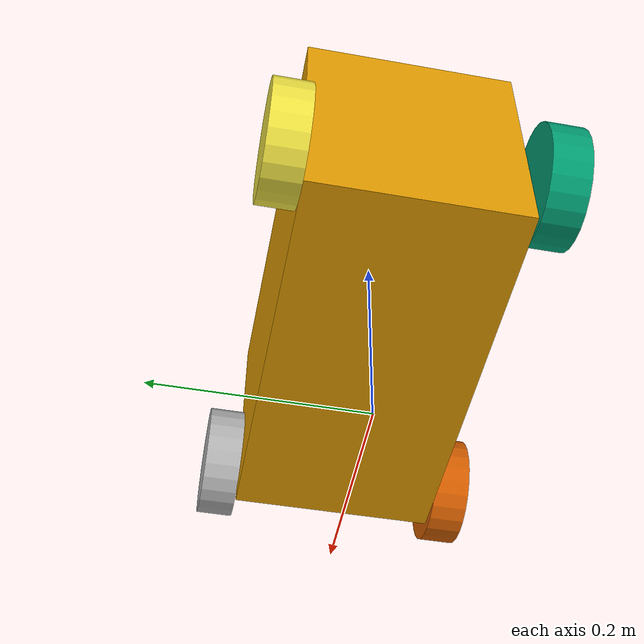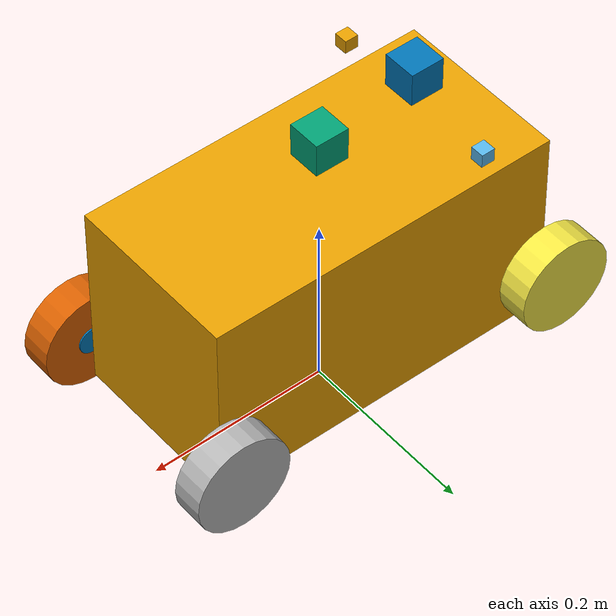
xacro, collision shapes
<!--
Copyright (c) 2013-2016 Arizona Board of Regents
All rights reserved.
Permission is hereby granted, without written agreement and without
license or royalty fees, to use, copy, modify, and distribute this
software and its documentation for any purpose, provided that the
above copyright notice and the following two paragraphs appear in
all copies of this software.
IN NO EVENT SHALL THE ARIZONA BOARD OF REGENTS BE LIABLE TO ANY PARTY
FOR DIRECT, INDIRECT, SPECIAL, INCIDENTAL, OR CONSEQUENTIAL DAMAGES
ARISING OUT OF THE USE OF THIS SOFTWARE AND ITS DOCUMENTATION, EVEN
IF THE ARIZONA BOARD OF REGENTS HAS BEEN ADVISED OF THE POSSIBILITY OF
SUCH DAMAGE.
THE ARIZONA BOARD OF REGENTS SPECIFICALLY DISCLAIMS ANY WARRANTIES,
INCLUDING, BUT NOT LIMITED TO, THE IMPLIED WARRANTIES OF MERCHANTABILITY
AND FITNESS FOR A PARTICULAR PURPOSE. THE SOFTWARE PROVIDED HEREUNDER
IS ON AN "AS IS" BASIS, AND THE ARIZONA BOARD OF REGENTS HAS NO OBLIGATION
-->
<?xml version="1.0" ?>

<!-- Inertial parameters selected with the help of
http://www.car-engineer.com/vehicle-inertia-calculation-tool/
-->

<robot name="$(arg roboname)" xmlns:xacro="http://www.ros.org/wiki/xacro">

  <xacro:arg name="camera_left" default="true"/>
  <xacro:arg name="camera_right" default="true"/>
  <xacro:arg name="velodyne_points" default="true"/>
  <xacro:arg name="front_laser_points" default="true"/>

  <xacro:property name="PI" value="3.1415926835897931"/>
  <xacro:property name="base_height" value="0.159585"/>
  <xacro:property name="base_mass" value="69.1875"/>
  <xacro:property name="base_mass_ixx" value="0.212625"/>
  <xacro:property name="base_mass_iyy" value="3.537"/>
  <xacro:property name="base_mass_izz" value="3.537"/>
  <xacro:property name="base_mass_ixz" value="-0.104625"/>
  <xacro:property name="tyre_x" value="0.1965"/>
  <xacro:property name="tyre_y" value="0.11475"/>
  <xacro:property name="tyre_length" value="0.03435"/>
  <xacro:property name="tyre_r" value="0.099"/>
  <xacro:property name="tyre_radius" value="0.0534"/>
  <xacro:property name="tyre_mass" value="0.135"/>
  <xacro:property name="tyre_mass_ixx" value="0.18225"/>
  <xacro:property name="tyre_mass_iyy" value="0.189"/>
  <xacro:property name="tyre_mass_izz" value="0.351"/>
  <xacro:property name="car_height" value="0.21717"/>
  <xacro:property name="car_to_bumper" value="0.36"/>
  <xacro:property name="front_bumper_height" value="${car_height/2}"/>
  <xacro:property name="sensor_box" value="0.0375"/>
  <xacro:property name="sensor_box2" value="0.0015"/>
  <xacro:property name="camera_box" value="0.015"/>
  <xacro:property name="tyre_height" value="-0.1044"/>
  <xacro:property name="str_length" value="0.0015"/>
  <xacro:property name="str_radius" value="0.015"/>
  <xacro:property name="str_angle" value="0.6"/>
  <xacro:property name="car_width" value="0.19515"/>
  <xacro:property name="front_laser_points" value="$(arg front_laser_points)"/>
  <xacro:property name="velodyne_points" value="$(arg velodyne_points)"/>
  <xacro:property name="camera_right" value="$(arg camera_right)"/>
  <xacro:property name="camera_left" value="$(arg camera_left)"/>
  <xacro:property name="tyre_origin">
	<origin xyz="0 0 0" rpy="${PI/2} 0 0"/>
  </xacro:property>
  <xacro:property name="tyre_origin_2">
        <origin xyz="0 0 0" rpy="0 0 ${PI/2}"/>
  </xacro:property>
  <xacro:property name="tyre_origin_3">
        <origin xyz="0 0 0" rpy="0 0 ${-PI/2}"/>
  </xacro:property>

	<xacro:include filename="$(find catvehicle)/urdf/catvehicle.gazebo"/>
    <xacro:if value="${front_laser_points}">
    	<xacro:include filename="$(find catvehicle)/urdf/catvehicle_front_laser_points.gazebo"/>
    </xacro:if>
    <xacro:if value="${velodyne_points}">
      <!-- You can pass parameters in order to change the max/min
           horizontal angles of the velodyne sensors. These are interpreted
           in the velodyne_points gazebo file -->
      <xacro:arg name="velodyne_min_angle" default="-0.4"/>
      <xacro:arg name="velodyne_max_angle" default="0.4"/>
      <xacro:property name="velodyne_min_angle" value="$(arg velodyne_min_angle)"/>
      <xacro:property name="velodyne_max_angle" value="$(arg velodyne_max_angle)"/>

    	<xacro:include filename="$(find catvehicle)/urdf/catvehicle_velodyne_points.gazebo"/>
    </xacro:if>
    <xacro:if value="${camera_right}">
    	<xacro:include filename="$(find catvehicle)/urdf/catvehicle_right_camera.gazebo"/>
    </xacro:if>
    <xacro:if value="${camera_left}">
    	<xacro:include filename="$(find catvehicle)/urdf/catvehicle_left_camera.gazebo"/>
    </xacro:if>

<!--Car Body-->

<link name="base_link">
    <collision>
         <origin xyz="0 0 ${base_height}" rpy="0 0 0"/>
           <geometry>
            <box size="0.393 ${car_width} ${car_height}"/>
        </geometry>
      </collision>
     <visual>
        <origin xyz="-0.0375 0 ${base_height + 0.0075}" rpy="0 0 0"/>
        <geometry>
          <mesh filename="package://catvehicle/meshes/ford_escape_no_wheels_2_small.dae"/>
        </geometry>
     </visual>
</link>

<joint name="inertial_joint" type="fixed">
      <parent link="base_link"/>
      <child link="main_mass"/>
      <origin xyz="0 0 0" rpy="0 0 0"/>
</joint>

<link name="main_mass" type="fixed">
     <parent link="inertial_joint"/>
     <inertial>
        <origin xyz="0 0 ${base_height}" rpy="0 0 0"/>
        <mass value="${base_mass}"/>
        <inertia
          ixx="${base_mass_ixx}"  ixy="0.000000" ixz="${base_mass_ixz}"
          iyy="${base_mass_iyy}" iyz="0.000000"
          izz="${base_mass_izz}"/>
      </inertial>
</link>

<!--Back Right Wheel-->

<joint name="back_right_wheel_joint" type="continuous">
      <parent link="base_link"/>
      <child link="back_right_wheel_link"/>
      <origin xyz="${-tyre_x} ${-tyre_y} ${tyre_r}" rpy="0 0 0"/>
      <axis xyz="0 1 0"/>
      <dynamics damping="0.1"/>
      <limit effort="10000" velocity="100" />
      <joint_properties damping="0.0" friction="0.0" />
</joint>

<link name="back_right_wheel_link">
     <collision>
      <xacro:insert_block name="tyre_origin"/>
        <geometry>
         <cylinder length="${tyre_length}" radius="${tyre_radius}"/>
        </geometry>
     </collision>

     <visual>
      <xacro:insert_block name="tyre_origin_3"/>
               <geometry>

          <mesh filename="package://catvehicle/meshes/ford_escape_wheel_samll.dae"/>
            <scale xyz="1.2 1 1"/>

       </geometry>
      </visual>

      <inertial>
        <origin xyz="0 0 0" rpy="0 0 0"/>
        <mass value="${tyre_mass}"/>
        <inertia
          ixx="${tyre_mass_ixx}"  ixy="0.000000"  ixz="0.000000"
          iyy="${tyre_mass_iyy}"  iyz="0.000000"
          izz="${tyre_mass_izz}"/>
      </inertial>
</link>

<!--Back Left Wheel-->

<joint name="back_left_wheel_joint" type="continuous">
      <parent link="base_link"/>
      <child link="back_left_wheel_link"/>
      <origin xyz="${-tyre_x} ${tyre_y} ${tyre_r}" rpy="0 0 0"/>
      <axis xyz="0 1 0"/>
      <dynamics damping="0.1"/>
      <limit effort="10000" velocity="100" />
      <joint_properties damping="0.0" friction="0.0" />
</joint>

<link name="back_left_wheel_link">
     <collision>
      <xacro:insert_block name="tyre_origin"/>
        <geometry>
         <cylinder length="${tyre_length}" radius="${tyre_radius}"/>
        </geometry>
     </collision>

     <visual>
      <xacro:insert_block name="tyre_origin_2"/>
               <geometry>

          <mesh filename="package://catvehicle/meshes/ford_escape_wheel_samll.dae"/>
            <scale xyz="1.2 1 1"/>

       </geometry>
      </visual>

      <inertial>
        <origin xyz="0 0 0" rpy="0 0 0"/>
        <mass value="${tyre_mass}"/>
        <inertia
          ixx="${tyre_mass_ixx}"  ixy="0.000000"  ixz="0.000000"
          iyy="${tyre_mass_iyy}"  iyz="0.000000"
          izz="${tyre_mass_izz}"/>
      </inertial>
</link>

<!--Right Steering-->

<joint name="front_right_steering_joint" type="revolute">
	<parent link="base_link"/>
	<child link="front_right_steering_link"/>
	<origin xyz="${tyre_x} ${-car_width/2 - str_length/2} ${tyre_r}" rpy="0 0 0"/>
        <axis xyz="0 0 1"/>
	<limit effort="1000.0" lower="${-str_angle}" upper="${str_angle}" velocity="0.5"/>
</joint>

<link name="front_right_steering_link">
	<collision>
	      <xacro:insert_block name="tyre_origin"/>
	        <geometry>
        	 <cylinder length="${str_length}" radius="${str_radius}"/>
       		</geometry>
	</collision>

	<visual>
              <xacro:insert_block name="tyre_origin"/>
                <geometry>
                 <cylinder length="${str_length}" radius="${str_radius}"/>
                </geometry>
	</visual>

      <inertial>
        <origin xyz="0 0 0" rpy="0 0 0"/>
        <mass value="10.00"/>
        <inertia
          ixx="0.4"  ixy="0.000000"  ixz="0.000000"
          iyy="0.6"  iyz="0.000000"
          izz="0.4"/>
      </inertial>
</link>

<!--Right Front Wheel-->

<joint name="front_right_wheel_joint" type="continuous">
      <parent link="front_right_steering_link"/>
      <child link="front_right_wheel_link"/>
      <origin xyz="0 ${-str_length/2 - tyre_length/2} 0" rpy="0 0 0"/>
      <axis xyz="0 1 0"/>
</joint>

<link name="front_right_wheel_link">
     <collision>
      <xacro:insert_block name="tyre_origin"/>
        <geometry>
         <cylinder length="${tyre_length}" radius="${tyre_radius}"/>
	</geometry>
     </collision>

     <visual>
      <xacro:insert_block name="tyre_origin_3"/>
       <geometry>

          <mesh filename="package://catvehicle/meshes/ford_escape_wheel_samll.dae"/>
            <scale xyz="1.2 1 1"/>

       </geometry>
      </visual>

      <inertial>
        <origin xyz="0 0 0" rpy="0 0 0"/>
        <mass value="${tyre_mass}"/>
        <inertia
          ixx="${tyre_mass_ixx}"  ixy="0.000000"  ixz="0.000000"
          iyy="${tyre_mass_iyy}"  iyz="0.000000"
          izz="${tyre_mass_izz}"/>
      </inertial>
</link>

<!--Left Steering-->

<joint name="front_left_steering_joint" type="revolute">
        <parent link="base_link"/>
        <child link="front_left_steering_link"/>
        <origin xyz="${tyre_x} ${car_width/2 + str_length/2} ${tyre_r}" rpy="0 0 0"/>
        <axis xyz="0 0 1"/>
        <limit effort="1000.0" lower="${-str_angle}" upper="${str_angle}" velocity="0.5"/>
</joint>

<link name="front_left_steering_link">
      <parent link="base_link"/>
        <collision>
              <xacro:insert_block name="tyre_origin"/>
                <geometry>
                 <cylinder length="${str_length}" radius="${str_radius}"/>
                </geometry>
        </collision>

        <visual>
              <xacro:insert_block name="tyre_origin"/>
                <geometry>
                 <cylinder length="${str_length}" radius="${str_radius}"/>
                </geometry>
        </visual>

      <inertial>
        <origin xyz="0 0 0" rpy="0 0 0"/>
        <mass value="10.00"/>
        <inertia
          ixx="0.4"  ixy="0.000000"  ixz="0.000000"
          iyy="0.6"  iyz="0.000000"
          izz="0.4"/>
      </inertial>
</link>

<!--Front Left Wheel-->

<joint name="front_left_wheel_joint" type="continuous">
      <parent link="front_left_steering_link"/>
      <child link="front_left_wheel_link"/>
      <origin xyz="0 ${str_length/2 + tyre_length/2} 0" rpy="0 0 0"/>
      <axis xyz="0 1 0"/>

      <dynamics damping="0.1"/>
      <limit effort="10000" velocity="100" />
      <joint_properties damping="0.0" friction="0.0" />

</joint>

<link name="front_left_wheel_link">
     <parent link="front_left_wheel_joint"/>
     <collision>
	<origin xyz="0 0 0" rpy="${PI/2} 0 0"/>
        <geometry>
         <cylinder length="${tyre_length}" radius="${tyre_radius}"/>
        </geometry>
     </collision>

     <visual>
      <xacro:insert_block name="tyre_origin_2"/>
       <geometry>

          <mesh filename="package://catvehicle/meshes/ford_escape_wheel_samll.dae"/>
            <scale xyz="1.2 1 1"/>
       </geometry>
      </visual>

      <inertial>
        <origin xyz="0 0 0" rpy="0 0 0"/>
        <mass value="${tyre_mass}"/>
        <inertia
          ixx="${tyre_mass_ixx}"  ixy="0.000000"  ixz="0.000000"
          iyy="${tyre_mass_iyy}"  iyz="0.000000"
          izz="${tyre_mass_izz}"/>
      </inertial>
</link>

<!-- Cameras-->

<joint name="camera_right_joint" type="fixed">
<origin xyz="-0.1125 -${car_width/2} ${0.10875 + camera_box/2 + 0.1875}" rpy="0 0 -${PI/2}"/>
	<axis xyz="0 0 1"/>
	<parent link="base_link"/>
	<child link="camera_right_link"/>
</joint>

<link name="camera_right_link">
	<collision>
	  <origin xyz="0 0 0" rpy="0 0 0"/>
	  <geometry>
	   <box size="${camera_box} ${camera_box} ${camera_box}"/>
	  </geometry>
	</collision>

	<visual>
	  <origin xyz="0 0 0" rpy="0 0 0"/>
	  <geometry>
	  <box size="${camera_box} ${camera_box} ${camera_box}"
/>
          </geometry>
	</visual>

    <inertial>
      <mass value="1e-5" />
      <origin xyz="0 0 0" rpy="0 0 0"/>
      <inertia ixx="1e-6" ixy="0" ixz="0" iyy="1e-6" iyz="0" izz="1e-6" />
    </inertial>
</link>

<joint name="camera_left_joint" type="fixed">
<origin xyz="-0.1125 ${car_width/2} ${0.10875 + camera_box/2 +  0.1875}" rpy="0 0 ${PI/2}"/>
	<axis xyz="0 0 1"/>
	<parent link="base_link"/>
	<child link="camera_left_link"/>
</joint>

<link name="camera_left_link">
	<collision>
	  <origin xyz="0 0 0" rpy="0 0 0"/>
	  <geometry>
	   <box size="${camera_box} ${camera_box} ${camera_box}"/>
	  </geometry>
	</collision>

	<visual>
	  <origin xyz="0 0 0" rpy="0 0 0"/>
	  <geometry>
	  <box size="${camera_box} ${camera_box} ${camera_box}"
/>
          </geometry>
	</visual>

    <inertial>
      <mass value="1e-5" />
      <origin xyz="0 0 0" rpy="0 0 0"/>
      <inertia ixx="1e-6" ixy="0" ixz="0" iyy="1e-6" iyz="0" izz="1e-6" />
    </inertial>
</link>

<joint name="camera_joint" type="fixed">
<origin xyz="0 0 ${0.10875 + sensor_box/2 +  0.1875}" rpy="0 0 0"/>
	<axis xyz="0 0 1"/>
	<parent link="base_link"/>
	<child link="camera_link"/>
</joint>

<link name="camera_link">
	<collision>
	  <origin xyz="0 0 0" rpy="0 0 0"/>
	  <geometry>
	   <box size="${sensor_box} ${sensor_box} ${sensor_box}"/>
	  </geometry>
	</collision>

	<visual>
	  <origin xyz="0 0 0" rpy="0 0 0"/>
	  <geometry>
	  <box size="${sensor_box} ${sensor_box} ${sensor_box}"
/>
          </geometry>
	</visual>

    <inertial>
      <mass value="1e-5" />
      <origin xyz="0 0 0" rpy="0 0 0"/>
      <inertia ixx="1e-6" ixy="0" ixz="0" iyy="1e-6" iyz="0" izz="1e-6" />
    </inertial>
</link>

<!--Velodyne LIDAR-->

<joint name="velodyne_joint" type="fixed">
	<origin xyz="0 0 ${sensor_box/2 + 0.0015}" rpy="0 0 0"/>
	<axis xyz="0 0 1"/>
	<parent link="camera_link"/>
	<child link="velodyne_link"/>
</joint>

<link name="velodyne_link">

        <visual>
          <origin xyz="0 0 0" rpy="0 0 0"/>
          <geometry>
           <mesh filename="package://catvehicle/meshes/hokuyo.dae"/>
          </geometry>
        </visual>

    <inertial>
      <mass value="1e-5" />
      <origin xyz="0 0 0" rpy="0 0 0"/>
      <inertia ixx="1e-6" ixy="0" ixz="0" iyy="1e-6" iyz="0" izz="1e-6" />
    </inertial>
</link>
<joint name="front_laser_joint" type="fixed">
	<origin xyz="-0.1125 0 ${sensor_box/2 + 0.0015}" rpy="0 0 0"/>
	<axis xyz="0 0 1"/>
	<parent link="camera_link"/>
	<child link="front_laser_link"/>
</joint>

<link name="front_laser_link">
     <parent link="front_laser_joint"/>
        <collision>
          <origin xyz="0 0 0" rpy="0 0.0 0"/>
          <geometry>
           <box size="${sensor_box} ${sensor_box} ${sensor_box}"/>
          </geometry>
        </collision>

        <visual>
          <origin xyz="0 0 0" rpy="0 0 0"/>
          <geometry>
           <box size="${sensor_box} ${sensor_box} ${sensor_box}"/>
          </geometry>
        </visual>

    <inertial>
      <mass value="1e-5" />
      <origin xyz="0 0 0" rpy="0 0 0"/>
      <inertia ixx="1e-6" ixy="0" ixz="0" iyy="1e-6" iyz="0" izz="1e-6" />
    </inertial>
</link>

<!-- motors and transmissions for the two rear wheels -->
  <transmission name="tran1">
    <type>transmission_interface/SimpleTransmission</type>
    <joint name="back_right_wheel_joint">
      <hardwareInterface>VelocityJointInterface</hardwareInterface>
    </joint>
    <actuator name="motor1">
      <hardwareInterface>VelocityJointInterface</hardwareInterface>
      <mechanicalReduction>1</mechanicalReduction>
    </actuator>
  </transmission>

  <transmission name="tran2">
    <type>transmission_interface/SimpleTransmission</type>
    <joint name="back_left_wheel_joint">
      <hardwareInterface>VelocityJointInterface</hardwareInterface>
    </joint>
    <actuator name="motor2">
      <hardwareInterface>VelocityJointInterface</hardwareInterface>
      <mechanicalReduction>1</mechanicalReduction>
    </actuator>
  </transmission>

  <transmission name="rack_and_pinion_left">
    <type>transmission_interface/SimpleTransmission</type>
    <joint name="front_left_steering_joint">
      <hardwareInterface>PositionJointInterface</hardwareInterface>
    </joint>
    <actuator name="eps_left">
      <hardwareInterface>PositionJointInterface</hardwareInterface>
      <mechanicalReduction>1</mechanicalReduction>
    </actuator>
  </transmission>

  <transmission name="rack_and_pinion_right">
    <type>transmission_interface/SimpleTransmission</type>
    <joint name="front_right_steering_joint">
      <hardwareInterface>PositionJointInterface</hardwareInterface>
    </joint>
    <actuator name="eps_right">
      <hardwareInterface>PositionJointInterface</hardwareInterface>
      <mechanicalReduction>1</mechanicalReduction>
    </actuator>
  </transmission>

</robot>
